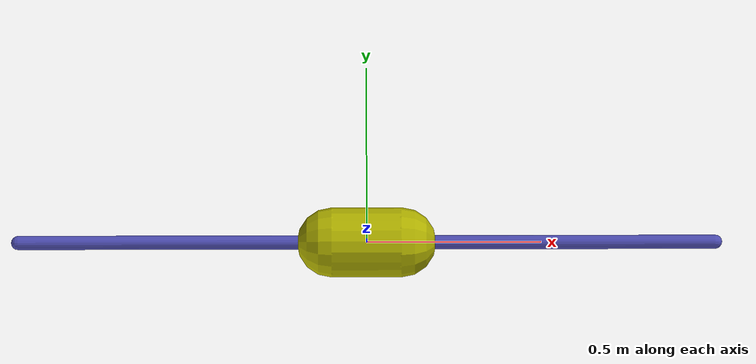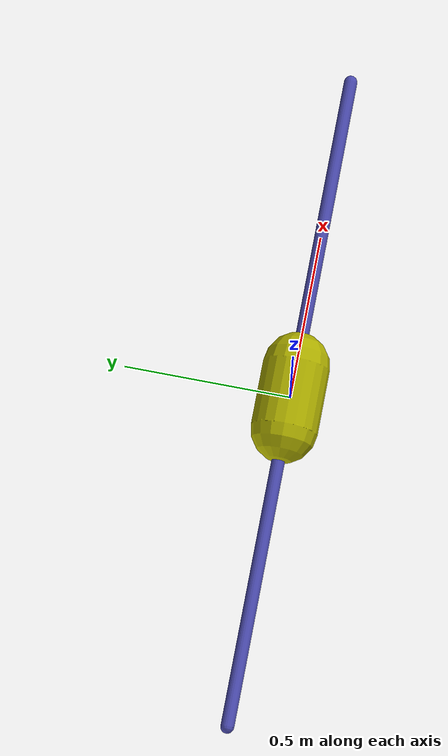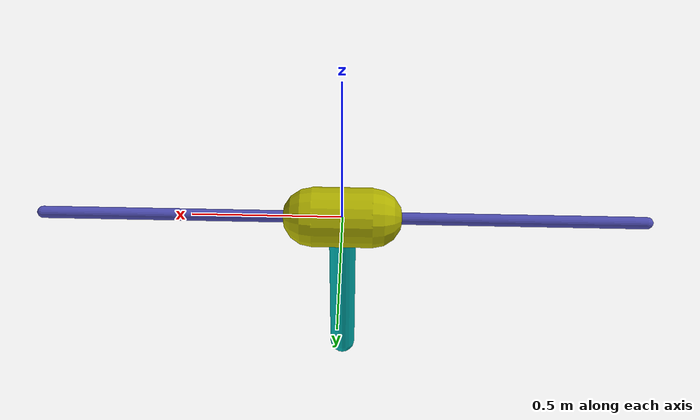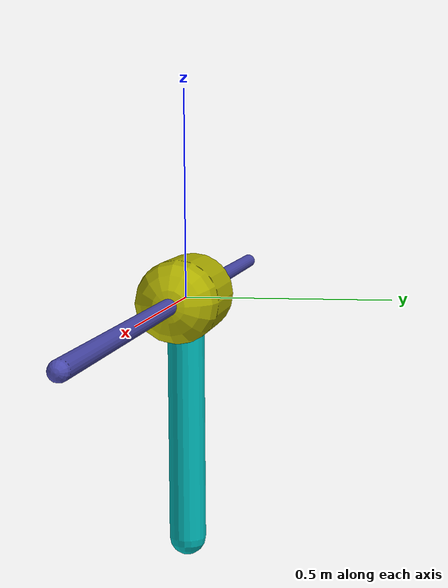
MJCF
<mujoco model="cart_poleV2">
    <compiler inertiafromgeom="true" angle="radian"/>

    <default>
        <joint armature="0" damping="0.01" limited="true"/>
        <geom contype="0" friction="0 0 0" rgba="0.7 0.7 0 1"/>
    </default>
    <option gravity="0 0 -9.81" timestep="0.01" iterations="1" ls_iterations="5"/>
    <worldbody>
        <light directional="true" pos="-0.5 0.5 3" dir="0 0 -1"/>

        <geom name="rail" pos="0 0 0" quat="0.707 0 0.707 0" rgba="0.3 0.3 0.7 1" size="0.02 1" type="capsule"/>
        <camera name="world" mode="fixed" pos="0 0 5" xyaxes="1 0 0 0 1 0"/>
        <body name="cart" pos="0 0 0">
            <joint axis="1 0 0" limited="true" name="slider" pos="0 0 0" range="-1 1" type="slide"/>
            <geom name="cart" pos="0 0 0" quat="0.707 0 0.707 0" size="0.1 0.1" type="capsule"/>
            <body name="pole" pos="0 0 0">
                <joint axis="0 1 0" limited="false" name="hinge" pos="0 0 0" type="hinge"/>
                <geom fromto="0 0 -0.6 0 0 0" name="cpole" rgba="0 0.7 0.7 1" size="0.045" mass="0.2" type="capsule"/>
                <site name="tip" pos="0 0 -0.6"/>
            </body>
        </body>
    </worldbody>
    <actuator>
        <motor ctrllimited="true" ctrlrange="-50 50" joint="slider" name="slide"/>
    </actuator>
</mujoco>
